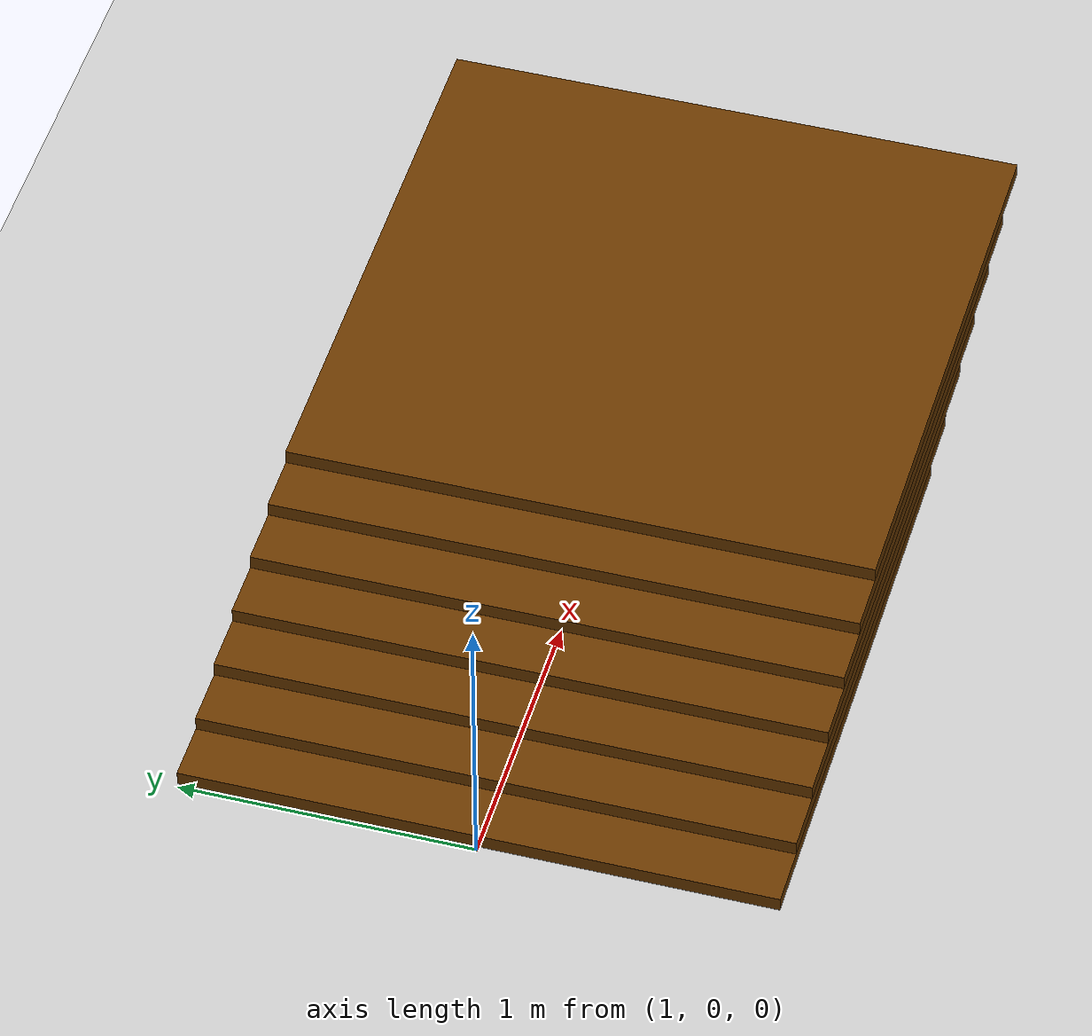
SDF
<?xml version="1.0" ?>
<sdf version="1.5">
    <world name="default">

        <physics type="ode">
        <max_step_size>0.0002</max_step_size>
        <real_time_factor>1</real_time_factor>
        <real_time_update_rate>5000</real_time_update_rate>
        <gravity>0 0 -9.81</gravity>
            <ode>
                <solver>
                <type>quick</type>
                <iters>50</iters>
                <sor>1.3</sor>
                </solver>
                <constraints>
                <cfm>0.0</cfm>
                <erp>0.2</erp>
                <contact_max_correcting_vel>0.1</contact_max_correcting_vel>
                <contact_surface_layer>0.0001</contact_surface_layer>
                </constraints>
            </ode>
        </physics>

        <scene>
        <sky>
            <clouds>
                <speed>12</speed>
            </clouds>
        </sky>
        </scene>
        <!-- A global light source -->
        <include>
            <uri>model://sun</uri>
        </include>
        <!-- A ground plane -->
        <include>
            <uri>model://ground_plane</uri>
        </include>
        <!-- environment blocks, obstacles or stairs -->
        <!-- stairs 1 -->
        <model name="stairs">
            <static>true</static>
            <link name="floor">
                <pose>2 0 0.045 0 0 0</pose>
                <collision name="floor_collision">
                    <geometry>
                        <box>
                            <size>2 2 0.05</size>
                        </box>
                    </geometry>
                </collision>
                <visual name="floor_visual">
                    <geometry>
                        <box>
                            <size>2 2 0.05</size>
                        </box>
                    </geometry>
                    <material>
                        <ambient>0.2 0.2 0.2 1.0</ambient>
                        <diffuse>.421 0.225 0.0 1.0</diffuse>
                    </material>
                </visual>
            </link>

            <link name="floor1">
                <pose>2.2 0 0.095 0 0 0</pose>
                <collision name="floor1_collision">
                    <geometry>
                        <box>
                            <size>2 2 0.05</size>
                        </box>
                    </geometry>
                </collision>
                <visual name="floor1_visual">
                    <geometry>
                        <box>
                            <size>2 2 0.05</size>
                        </box>
                    </geometry>
                    <material>
                        <ambient>0.2 0.2 0.2 1.0</ambient>
                        <diffuse>.421 0.225 0.0 1.0</diffuse>
                    </material>
                </visual>
            </link>

            <link name="floor2">
                <pose>2.4 0 0.145 0 0 0</pose>
                <collision name="floor2_collision">
                    <geometry>
                        <box>
                            <size>2 2 0.05</size>
                        </box>
                    </geometry>
                </collision>
                <visual name="floor2_visual">
                    <geometry>
                        <box>
                            <size>2 2 0.05</size>
                        </box>
                    </geometry>
                    <material>
                        <ambient>0.2 0.2 0.2 1.0</ambient>
                        <diffuse>.421 0.225 0.0 1.0</diffuse>
                    </material>
                </visual>
            </link>

            <link name="floor3">
                <pose>2.6 0 0.195 0 0 0</pose>
                <collision name="floor3_collision">
                    <geometry>
                        <box>
                            <size>2 2 0.05</size>
                        </box>
                    </geometry>
                </collision>
                <visual name="floor3_visual">
                    <geometry>
                        <box>
                            <size>2 2 0.05</size>
                        </box>
                    </geometry>
                    <material>
                        <ambient>0.2 0.2 0.2 1.0</ambient>
                        <diffuse>.421 0.225 0.0 1.0</diffuse>
                    </material>
                </visual>
            </link>

            <link name="floor4">
                <pose>2.8 0 0.245 0 0 0</pose>
                <collision name="floor4_collision">
                    <geometry>
                        <box>
                            <size>2 2 0.05</size>
                        </box>
                    </geometry>
                </collision>
                <visual name="floor4_visual">
                    <geometry>
                        <box>
                            <size>2 2 0.05</size>
                        </box>
                    </geometry>
                    <material>
                        <ambient>0.2 0.2 0.2 1.0</ambient>
                        <diffuse>.421 0.225 0.0 1.0</diffuse>
                    </material>
                </visual>
            </link>

            <link name="floor5">
                <pose>3.0 0 0.295 0 0 0</pose>
                <collision name="floor5_collision">
                    <geometry>
                        <box>
                            <size>2 2 0.05</size>
                        </box>
                    </geometry>
                </collision>
                <visual name="floor5_visual">
                    <geometry>
                        <box>
                            <size>2 2 0.05</size>
                        </box>
                    </geometry>
                    <material>
                        <ambient>0.2 0.2 0.2 1.0</ambient>
                        <diffuse>.421 0.225 0.0 1.0</diffuse>
                    </material>
                </visual>
            </link>

            <link name="floor6">
                <pose>3.2 0 0.345 0 0 0</pose>
                <collision name="floor6_collision">
                    <geometry>
                        <box>
                            <size>2 2 0.05</size>
                        </box>
                    </geometry>
                </collision>
                <visual name="floor6_visual">
                    <geometry>
                        <box>
                            <size>2 2 0.05</size>
                        </box>
                    </geometry>
                    <material>
                        <ambient>0.2 0.2 0.2 1.0</ambient>
                        <diffuse>.421 0.225 0.0 1.0</diffuse>
                    </material>
                </visual>
            </link>
            </model>

    </world>
</sdf>
